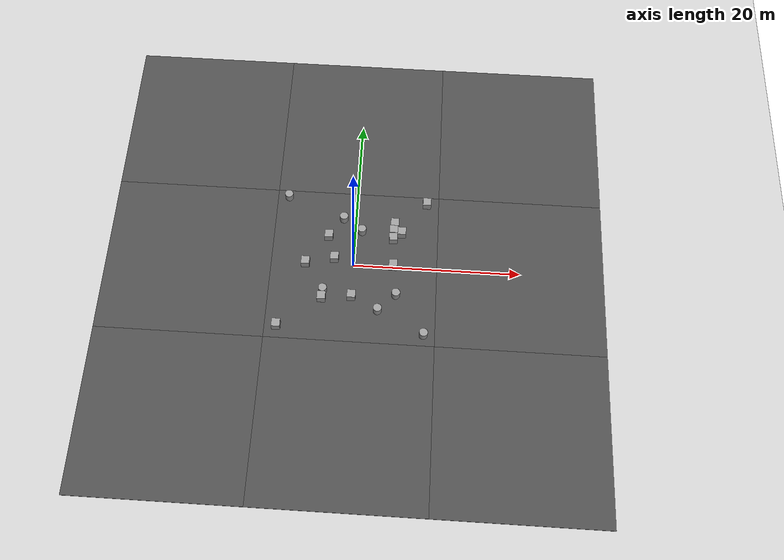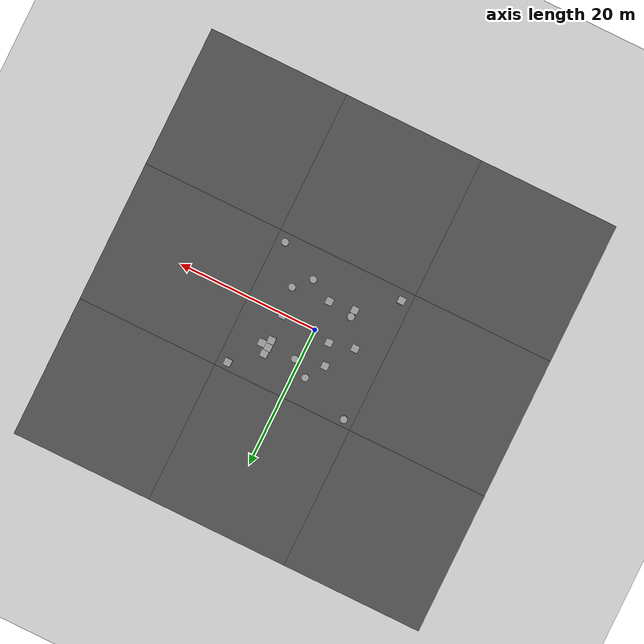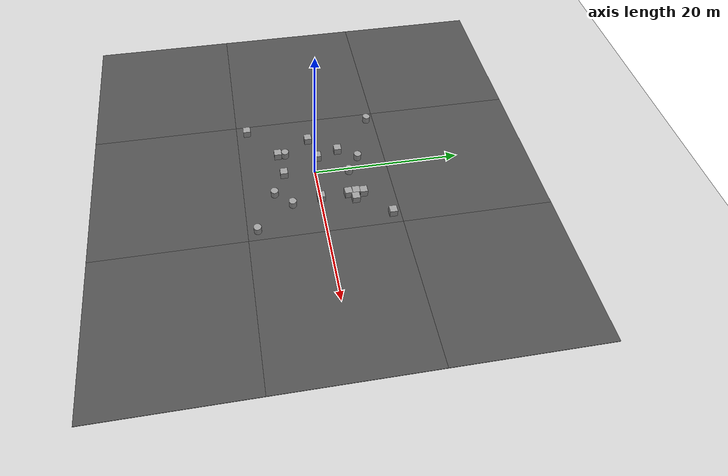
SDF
<sdf version="1.7">
 <world name="default">
  <scene><ambient>0.4 0.4 0.4 1</ambient><background>0.7 0.7 0.7 1</background><shadows>1</shadows></scene>
  <light name="sun" type="directional">
   <pose>0 0 10 0 -0 0</pose>
   <diffuse>0.8 0.8 0.8 1</diffuse>
   <specular>0.2 0.2 0.2 1</specular>
   <attenuation>
    <range>1000</range>
    <constant>0.9</constant>
    <linear>0.01</linear>
    <quadratic>0.001</quadratic>
   </attenuation>
   <direction>-0.5 0.1 -0.9</direction>
   <spot><inner_angle>0</inner_angle><outer_angle>0</outer_angle><falloff>0</falloff></spot>
  </light>
  <model name="ground_plane">
   <static>1</static>
   <link name="link">
    <collision name="collision">
     <geometry><plane><normal>0 0 1</normal><size>100 100</size></plane></geometry>
     <surface>
      <contact><collide_bitmask>65535</collide_bitmask></contact>
      <friction><ode><mu>100</mu><mu2>50</mu2></ode></friction>
     </surface>
    </collision>
    <visual name="visual">
     <cast_shadows>0</cast_shadows>
     <geometry><plane><normal>0 0 1</normal><size>100 100</size></plane></geometry>
     <material>
      <script><uri>file://media/materials/scripts/gazebo.material</uri><name>Gazebo/Grey</name></script>
     </material>
    </visual>
   </link>
  </model>
  <physics type="ode">
   <real_time_update_rate>5000</real_time_update_rate>
   <max_step_size>0.002</max_step_size>
   <real_time_factor>10</real_time_factor>
   <ode>
    <solver>
     <type>quick</type>
     <iters>100</iters>
     <precon_iters>0</precon_iters>
     <sor>1.4</sor>
     <use_dynamic_moi_rescaling>1</use_dynamic_moi_rescaling>
    </solver>
    <constraints>
     <cfm>1e-05</cfm>
     <erp>0.2</erp>
     <contact_max_correcting_vel>2000</contact_max_correcting_vel>
     <contact_surface_layer>0.01</contact_surface_layer>
    </constraints>
   </ode>
  </physics>
  <gravity>0 0 -9.8</gravity>
  <magnetic_field>6e-06 2.3e-05 -4.2e-05</magnetic_field>
  <atmosphere type="adiabatic"/>
  <spherical_coordinates>
   <surface_model>EARTH_WGS84</surface_model>
   <latitude_deg>0</latitude_deg>
   <longitude_deg>0</longitude_deg>
   <elevation>0</elevation>
   <heading_deg>0</heading_deg>
  </spherical_coordinates>
  <model name="asphalt_plane">
   <static>1</static>
   <link name="link">
    <collision name="collision"><geometry><box><size>20 20 0.1</size></box></geometry></collision>
    <visual name="visual">
     <cast_shadows>0</cast_shadows>
     <geometry><box><size>20 20 0.1</size></box></geometry>
     <material>
      <script>
       <uri>model://asphalt_plane/materials/scripts</uri>
       <uri>model://asphalt_plane/materials/textures</uri>
       <name>vrc/asphalt</name>
      </script>
     </material>
    </visual>
   </link>
  </model>
  <model name="asphalt_plane_clone">
   <static>1</static>
   <link name="link">
    <collision name="collision"><geometry><box><size>20 20 0.1</size></box></geometry></collision>
    <visual name="visual">
     <cast_shadows>0</cast_shadows>
     <geometry><box><size>20 20 0.1</size></box></geometry>
     <material>
      <script>
       <uri>model://asphalt_plane/materials/scripts</uri>
       <uri>model://asphalt_plane/materials/textures</uri>
       <name>vrc/asphalt</name>
      </script>
     </material>
    </visual>
   </link>
   <pose>20 0 0 0 -0 0</pose>
  </model>
  <model name="asphalt_plane_clone_0">
   <static>1</static>
   <link name="link">
    <collision name="collision"><geometry><box><size>20 20 0.1</size></box></geometry></collision>
    <visual name="visual">
     <cast_shadows>0</cast_shadows>
     <geometry><box><size>20 20 0.1</size></box></geometry>
     <material>
      <script>
       <uri>model://asphalt_plane/materials/scripts</uri>
       <uri>model://asphalt_plane/materials/textures</uri>
       <name>vrc/asphalt</name>
      </script>
     </material>
    </visual>
   </link>
   <pose>20 -20 0 0 -0 0</pose>
  </model>
  <model name="asphalt_plane_clone_1">
   <static>1</static>
   <link name="link">
    <collision name="collision"><geometry><box><size>20 20 0.1</size></box></geometry></collision>
    <visual name="visual">
     <cast_shadows>0</cast_shadows>
     <geometry><box><size>20 20 0.1</size></box></geometry>
     <material>
      <script>
       <uri>model://asphalt_plane/materials/scripts</uri>
       <uri>model://asphalt_plane/materials/textures</uri>
       <name>vrc/asphalt</name>
      </script>
     </material>
    </visual>
   </link>
   <pose>0 -20 0 0 -0 0</pose>
  </model>
  <model name="asphalt_plane_clone_2">
   <static>1</static>
   <link name="link">
    <collision name="collision"><geometry><box><size>20 20 0.1</size></box></geometry></collision>
    <visual name="visual">
     <cast_shadows>0</cast_shadows>
     <geometry><box><size>20 20 0.1</size></box></geometry>
     <material>
      <script>
       <uri>model://asphalt_plane/materials/scripts</uri>
       <uri>model://asphalt_plane/materials/textures</uri>
       <name>vrc/asphalt</name>
      </script>
     </material>
    </visual>
   </link>
   <pose>-20 -20 0 0 -0 0</pose>
  </model>
  <model name="asphalt_plane_clone_3">
   <static>1</static>
   <link name="link">
    <collision name="collision"><geometry><box><size>20 20 0.1</size></box></geometry></collision>
    <visual name="visual">
     <cast_shadows>0</cast_shadows>
     <geometry><box><size>20 20 0.1</size></box></geometry>
     <material>
      <script>
       <uri>model://asphalt_plane/materials/scripts</uri>
       <uri>model://asphalt_plane/materials/textures</uri>
       <name>vrc/asphalt</name>
      </script>
     </material>
    </visual>
   </link>
   <pose>-20 0 0 0 -0 0</pose>
  </model>
  <model name="asphalt_plane_clone_4">
   <static>1</static>
   <link name="link">
    <collision name="collision"><geometry><box><size>20 20 0.1</size></box></geometry></collision>
    <visual name="visual">
     <cast_shadows>0</cast_shadows>
     <geometry><box><size>20 20 0.1</size></box></geometry>
     <material>
      <script>
       <uri>model://asphalt_plane/materials/scripts</uri>
       <uri>model://asphalt_plane/materials/textures</uri>
       <name>vrc/asphalt</name>
      </script>
     </material>
    </visual>
   </link>
   <pose>-20 20 0 0 -0 0</pose>
  </model>
  <model name="asphalt_plane_clone_5">
   <static>1</static>
   <link name="link">
    <collision name="collision"><geometry><box><size>20 20 0.1</size></box></geometry></collision>
    <visual name="visual">
     <cast_shadows>0</cast_shadows>
     <geometry><box><size>20 20 0.1</size></box></geometry>
     <material>
      <script>
       <uri>model://asphalt_plane/materials/scripts</uri>
       <uri>model://asphalt_plane/materials/textures</uri>
       <name>vrc/asphalt</name>
      </script>
     </material>
    </visual>
   </link>
   <pose>0 20 0 0 -0 0</pose>
  </model>
  <model name="asphalt_plane_clone_6">
   <static>1</static>
   <link name="link">
    <collision name="collision"><geometry><box><size>20 20 0.1</size></box></geometry></collision>
    <visual name="visual">
     <cast_shadows>0</cast_shadows>
     <geometry><box><size>20 20 0.1</size></box></geometry>
     <material>
      <script>
       <uri>model://asphalt_plane/materials/scripts</uri>
       <uri>model://asphalt_plane/materials/textures</uri>
       <name>vrc/asphalt</name>
      </script>
     </material>
    </visual>
   </link>
   <pose>20 20 0 0 -0 0</pose>
  </model>
  <light name="user_directional_light_0" type="directional">
   <pose>0 0 1 0 -0 0</pose>
   <diffuse>0.5 0.5 0.5 1</diffuse>
   <specular>0.1 0.1 0.1 1</specular>
   <direction>0.1 0.1 -0.9</direction>
   <attenuation>
    <range>20</range>
    <constant>0.5</constant>
    <linear>0.01</linear>
    <quadratic>0.001</quadratic>
   </attenuation>
   <spot><inner_angle>0</inner_angle><outer_angle>0</outer_angle><falloff>0</falloff></spot>
  </light>
  <model name="unit_box">
   <pose>4.71413 0.119158 0.549989 -2.2e-05 -0 -0.00162</pose>
   <link name="link">
    <inertial>
     <mass>1</mass>
     <inertia>
      <ixx>0.166667</ixx>
      <ixy>0</ixy>
      <ixz>0</ixz>
      <iyy>0.166667</iyy>
      <iyz>0</iyz>
      <izz>0.166667</izz>
     </inertia>
    </inertial>
    <collision name="collision"><geometry><box><size>1 1 1</size></box></geometry></collision>
    <visual name="visual">
     <geometry><box><size>1 1 1</size></box></geometry>
     <material>
      <script><name>Gazebo/Grey</name><uri>file://media/materials/scripts/gazebo.material</uri></script>
     </material>
    </visual>
   </link>
  </model>
  <model name="unit_cylinder">
   <pose>0.725884 4.63096 0.550019 3.5e-05 1.3e-05 -0.000784</pose>
   <link name="link">
    <inertial>
     <mass>1</mass>
     <inertia><ixx>0.145833</ixx><ixy>0</ixy><ixz>0</ixz><iyy>0.145833</iyy><iyz>0</iyz><izz>0.125</izz></inertia>
    </inertial>
    <collision name="collision">
     <geometry><cylinder><radius>0.5</radius><length>1</length></cylinder></geometry>
    </collision>
    <visual name="visual">
     <geometry><cylinder><radius>0.5</radius><length>1</length></cylinder></geometry>
     <material>
      <script><name>Gazebo/Grey</name><uri>file://media/materials/scripts/gazebo.material</uri></script>
     </material>
    </visual>
   </link>
  </model>
  <model name="unit_cylinder_0">
   <pose>-3.48852 -3.63166 0.54996 -1e-06 -0 -0.000639</pose>
   <link name="link">
    <inertial>
     <mass>1</mass>
     <inertia><ixx>0.145833</ixx><ixy>0</ixy><ixz>0</ixz><iyy>0.145833</iyy><iyz>0</iyz><izz>0.125</izz></inertia>
    </inertial>
    <collision name="collision">
     <geometry><cylinder><radius>0.5</radius><length>1</length></cylinder></geometry>
    </collision>
    <visual name="visual">
     <geometry><cylinder><radius>0.5</radius><length>1</length></cylinder></geometry>
     <material>
      <script><name>Gazebo/Grey</name><uri>file://media/materials/scripts/gazebo.material</uri></script>
     </material>
    </visual>
   </link>
  </model>
  <model name="unit_box_0">
   <pose>-0.038845 -4.22854 0.549996 -8e-06 -0 -0</pose>
   <link name="link">
    <inertial>
     <mass>1</mass>
     <inertia>
      <ixx>0.166667</ixx>
      <ixy>0</ixy>
      <ixz>0</ixz>
      <iyy>0.166667</iyy>
      <iyz>0</iyz>
      <izz>0.166667</izz>
     </inertia>
    </inertial>
    <collision name="collision"><geometry><box><size>1 1 1</size></box></geometry></collision>
    <visual name="visual">
     <geometry><box><size>1 1 1</size></box></geometry>
     <material>
      <script><name>Gazebo/Grey</name><uri>file://media/materials/scripts/gazebo.material</uri></script>
     </material>
    </visual>
   </link>
  </model>
  <model name="unit_box_1">
   <pose>-3.2677 3.71333 0.549989 -2.2e-05 -0 -0</pose>
   <link name="link">
    <inertial>
     <mass>1</mass>
     <inertia>
      <ixx>0.166667</ixx>
      <ixy>0</ixy>
      <ixz>0</ixz>
      <iyy>0.166667</iyy>
      <iyz>0</iyz>
      <izz>0.166667</izz>
     </inertia>
    </inertial>
    <collision name="collision"><geometry><box><size>1 1 1</size></box></geometry></collision>
    <visual name="visual">
     <geometry><box><size>1 1 1</size></box></geometry>
     <material>
      <script><name>Gazebo/Grey</name><uri>file://media/materials/scripts/gazebo.material</uri></script>
     </material>
    </visual>
   </link>
  </model>
  <model name="unit_box_2">
   <pose>-2.3798 0.721954 0.549989 -2.2e-05 0 0.00131</pose>
   <link name="link">
    <inertial>
     <mass>1</mass>
     <inertia>
      <ixx>0.166667</ixx>
      <ixy>0</ixy>
      <ixz>0</ixz>
      <iyy>0.166667</iyy>
      <iyz>0</iyz>
      <izz>0.166667</izz>
     </inertia>
    </inertial>
    <collision name="collision"><geometry><box><size>1 1 1</size></box></geometry></collision>
    <visual name="visual">
     <geometry><box><size>1 1 1</size></box></geometry>
     <material>
      <script><name>Gazebo/Grey</name><uri>file://media/materials/scripts/gazebo.material</uri></script>
     </material>
    </visual>
   </link>
  </model>
  <model name="unit_box_3">
   <pose>8.5216 8.92769 0.549989 -2.2e-05 -0 -0</pose>
   <link name="link">
    <inertial>
     <mass>1</mass>
     <inertia>
      <ixx>0.166667</ixx>
      <ixy>0</ixy>
      <ixz>0</ixz>
      <iyy>0.166667</iyy>
      <iyz>0</iyz>
      <izz>0.166667</izz>
     </inertia>
    </inertial>
    <collision name="collision"><geometry><box><size>1 1 1</size></box></geometry></collision>
    <visual name="visual">
     <geometry><box><size>1 1 1</size></box></geometry>
     <material>
      <script><name>Gazebo/Grey</name><uri>file://media/materials/scripts/gazebo.material</uri></script>
     </material>
    </visual>
   </link>
  </model>
  <model name="unit_box_4">
   <pose>-8.569 -8.51423 0.549989 -2.2e-05 -0 -0</pose>
   <link name="link">
    <inertial>
     <mass>1</mass>
     <inertia>
      <ixx>0.166667</ixx>
      <ixy>0</ixy>
      <ixz>0</ixz>
      <iyy>0.166667</iyy>
      <iyz>0</iyz>
      <izz>0.166667</izz>
     </inertia>
    </inertial>
    <collision name="collision"><geometry><box><size>1 1 1</size></box></geometry></collision>
    <visual name="visual">
     <geometry><box><size>1 1 1</size></box></geometry>
     <material>
      <script><name>Gazebo/Grey</name><uri>file://media/materials/scripts/gazebo.material</uri></script>
     </material>
    </visual>
   </link>
  </model>
  <model name="unit_cylinder_2">
   <pose>8.66383 -8.68399 0.55002 -1.3e-05 -3.7e-05 0.000351</pose>
   <link name="link">
    <inertial>
     <mass>1</mass>
     <inertia><ixx>0.145833</ixx><ixy>0</ixy><ixz>0</ixz><iyy>0.145833</iyy><iyz>0</iyz><izz>0.125</izz></inertia>
    </inertial>
    <collision name="collision">
     <geometry><cylinder><radius>0.5</radius><length>1</length></cylinder></geometry>
    </collision>
    <visual name="visual">
     <geometry><cylinder><radius>0.5</radius><length>1</length></cylinder></geometry>
     <material>
      <script><name>Gazebo/Grey</name><uri>file://media/materials/scripts/gazebo.material</uri></script>
     </material>
    </visual>
   </link>
  </model>
  <model name="unit_cylinder_3">
   <pose>-8.60425 8.9925 0.549994 2.5e-05 2e-06 0.000654</pose>
   <link name="link">
    <inertial>
     <mass>1</mass>
     <inertia><ixx>0.145833</ixx><ixy>0</ixy><ixz>0</ixz><iyy>0.145833</iyy><iyz>0</iyz><izz>0.125</izz></inertia>
    </inertial>
    <collision name="collision">
     <geometry><cylinder><radius>0.5</radius><length>1</length></cylinder></geometry>
    </collision>
    <visual name="visual">
     <geometry><cylinder><radius>0.5</radius><length>1</length></cylinder></geometry>
     <material>
      <script><name>Gazebo/Grey</name><uri>file://media/materials/scripts/gazebo.material</uri></script>
     </material>
    </visual>
   </link>
  </model>
  <model name="unit_cylinder_4">
   <pose>-1.59086 6.26443 0.549995 2.7e-05 1e-05 -1.4e-05</pose>
   <link name="link">
    <inertial>
     <mass>1</mass>
     <inertia><ixx>0.145833</ixx><ixy>0</ixy><ixz>0</ixz><iyy>0.145833</iyy><iyz>0</iyz><izz>0.125</izz></inertia>
    </inertial>
    <collision name="collision">
     <geometry><cylinder><radius>0.5</radius><length>1</length></cylinder></geometry>
    </collision>
    <visual name="visual">
     <geometry><cylinder><radius>0.5</radius><length>1</length></cylinder></geometry>
     <material>
      <script><name>Gazebo/Grey</name><uri>file://media/materials/scripts/gazebo.material</uri></script>
     </material>
    </visual>
   </link>
  </model>
  <model name="unit_box_5">
   <pose>4.57264 4.8111 0.55 0 -0 0.000792</pose>
   <link name="link">
    <inertial>
     <mass>1</mass>
     <inertia>
      <ixx>0.166667</ixx>
      <ixy>0</ixy>
      <ixz>0</ixz>
      <iyy>0.166667</iyy>
      <iyz>0</iyz>
      <izz>0.166667</izz>
     </inertia>
    </inertial>
    <collision name="collision"><geometry><box><size>1 1 1</size></box></geometry></collision>
    <visual name="visual">
     <geometry><box><size>1 1 1</size></box></geometry>
     <material>
      <script><name>Gazebo/Grey</name><uri>file://media/materials/scripts/gazebo.material</uri></script>
     </material>
    </visual>
   </link>
  </model>
  <model name="unit_box_6">
   <pose>-5.82884 -0.099288 0.549989 -2.2e-05 -0 -0</pose>
   <link name="link">
    <inertial>
     <mass>1</mass>
     <inertia>
      <ixx>0.166667</ixx>
      <ixy>0</ixy>
      <ixz>0</ixz>
      <iyy>0.166667</iyy>
      <iyz>0</iyz>
      <izz>0.166667</izz>
     </inertia>
    </inertial>
    <collision name="collision"><geometry><box><size>1 1 1</size></box></geometry></collision>
    <visual name="visual">
     <geometry><box><size>1 1 1</size></box></geometry>
     <material>
      <script><name>Gazebo/Grey</name><uri>file://media/materials/scripts/gazebo.material</uri></script>
     </material>
    </visual>
   </link>
  </model>
  <model name="unit_cylinder_1_clone">
   <pose>5.226 -3.7301 0.54999 6e-06 1.9e-05 0.000452</pose>
   <link name="link">
    <inertial>
     <mass>1</mass>
     <inertia><ixx>0.145833</ixx><ixy>0</ixy><ixz>0</ixz><iyy>0.145833</iyy><iyz>0</iyz><izz>0.125</izz></inertia>
    </inertial>
    <collision name="collision">
     <geometry><cylinder><radius>0.5</radius><length>1</length></cylinder></geometry>
    </collision>
    <visual name="visual">
     <geometry><cylinder><radius>0.5</radius><length>1</length></cylinder></geometry>
     <material>
      <script><name>Gazebo/Grey</name><uri>file://media/materials/scripts/gazebo.material</uri></script>
     </material>
    </visual>
   </link>
  </model>
  <model name="unit_box_7">
   <pose>-3.56781 -4.64289 0.549996 -8e-06 -0 -0</pose>
   <link name="link">
    <inertial>
     <mass>1</mass>
     <inertia>
      <ixx>0.166667</ixx>
      <ixy>0</ixy>
      <ixz>0</ixz>
      <iyy>0.166667</iyy>
      <iyz>0</iyz>
      <izz>0.166667</izz>
     </inertia>
    </inertial>
    <collision name="collision"><geometry><box><size>1 1 1</size></box></geometry></collision>
    <visual name="visual">
     <geometry><box><size>1 1 1</size></box></geometry>
     <material>
      <script><name>Gazebo/Grey</name><uri>file://media/materials/scripts/gazebo.material</uri></script>
     </material>
    </visual>
   </link>
  </model>
  <model name="unit_box_8">
   <pose>4.68835 5.8114 0.549978 0 6e-06 0.000609</pose>
   <link name="link">
    <inertial>
     <mass>1</mass>
     <inertia>
      <ixx>0.166667</ixx>
      <ixy>0</ixy>
      <ixz>0</ixz>
      <iyy>0.166667</iyy>
      <iyz>0</iyz>
      <izz>0.166667</izz>
     </inertia>
    </inertial>
    <collision name="collision"><geometry><box><size>1 1 1</size></box></geometry></collision>
    <visual name="visual">
     <geometry><box><size>1 1 1</size></box></geometry>
     <material>
      <script><name>Gazebo/Grey</name><uri>file://media/materials/scripts/gazebo.material</uri></script>
     </material>
    </visual>
   </link>
  </model>
  <model name="unit_box_9">
   <pose>4.59131 3.78313 0.549985 2.9e-05 -0 0.057275</pose>
   <link name="link">
    <inertial>
     <mass>1</mass>
     <inertia>
      <ixx>0.166667</ixx>
      <ixy>0</ixy>
      <ixz>0</ixz>
      <iyy>0.166667</iyy>
      <iyz>0</iyz>
      <izz>0.166667</izz>
     </inertia>
    </inertial>
    <collision name="collision"><geometry><box><size>1 1 1</size></box></geometry></collision>
    <visual name="visual">
     <geometry><box><size>1 1 1</size></box></geometry>
     <material>
      <script><name>Gazebo/Grey</name><uri>file://media/materials/scripts/gazebo.material</uri></script>
     </material>
    </visual>
   </link>
  </model>
  <model name="unit_cylinder_5_clone">
   <pose>3.14894 -5.87836 0.549998 3.2e-05 1.4e-05 6.8e-05</pose>
   <link name="link">
    <inertial>
     <mass>1</mass>
     <inertia><ixx>0.145833</ixx><ixy>0</ixy><ixz>0</ixz><iyy>0.145833</iyy><iyz>0</iyz><izz>0.125</izz></inertia>
    </inertial>
    <collision name="collision">
     <geometry><cylinder><radius>0.5</radius><length>1</length></cylinder></geometry>
    </collision>
    <visual name="visual">
     <geometry><cylinder><radius>0.5</radius><length>1</length></cylinder></geometry>
     <material>
      <script><name>Gazebo/Grey</name><uri>file://media/materials/scripts/gazebo.material</uri></script>
     </material>
    </visual>
   </link>
  </model>
  <model name="unit_box_10">
   <pose>5.57384 4.61992 0.549981 0 -0 0.000265</pose>
   <link name="link">
    <inertial>
     <mass>1</mass>
     <inertia>
      <ixx>0.166667</ixx>
      <ixy>0</ixy>
      <ixz>0</ixz>
      <iyy>0.166667</iyy>
      <iyz>0</iyz>
      <izz>0.166667</izz>
     </inertia>
    </inertial>
    <collision name="collision"><geometry><box><size>1 1 1</size></box></geometry></collision>
    <visual name="visual">
     <geometry><box><size>1 1 1</size></box></geometry>
     <material>
      <script><name>Gazebo/Grey</name><uri>file://media/materials/scripts/gazebo.material</uri></script>
     </material>
    </visual>
   </link>
  </model>
 </world>
</sdf>
